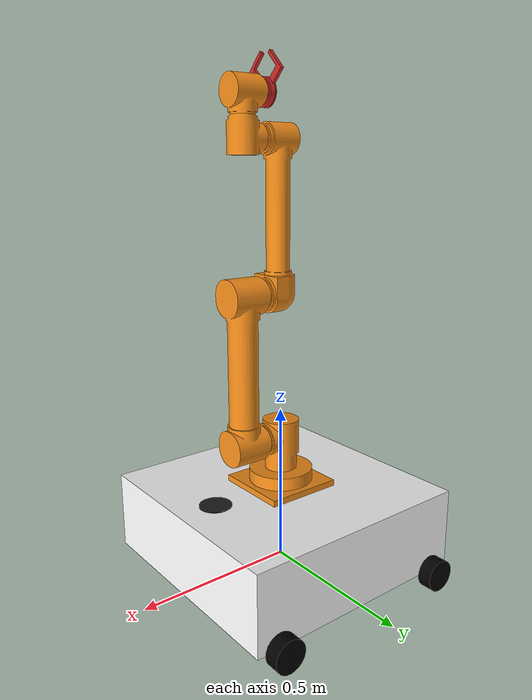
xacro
<?xml version="1.0"?>
<robot xmlns:xacro="http://www.ros.org/wiki/xacro"  name="robot">

    <xacro:include filename="robot_core.xacro" />
    <xacro:include filename="gazebo_control.xacro" />
    <xacro:include filename="inertial_macros.xacro" />
    <xacro:include filename="robot_control.urdf.xacro" />
    <xacro:include filename="arm_1_transmission.xacro" />
    <xacro:include filename="arm_2_transmission.xacro" />
    <xacro:include filename="arm_3_transmission.xacro" />
    <xacro:include filename="arm_4_transmission.xacro" />
    <xacro:include filename="arm_5_transmission.xacro" />
    <xacro:include filename="grip_1_transmission.xacro" />
    <xacro:include filename="grip_2_transmission.xacro" />

    <ros2_control name = "GazeboSimSystem" type= "system">
        <hardware>
            <plugin>gazebo_ros2_control/GazeboSystem</plugin>
        </hardware>
        <xacro:arm_1_transmission/>
        <xacro:arm_2_transmission/>
        <xacro:arm_3_transmission/>
        <xacro:arm_4_transmission/>
        <xacro:arm_5_transmission/>
        <xacro:grip_1_transmission/>
        <xacro:grip_2_transmission/>
    </ros2_control>
    <xacro:robot_controller/>
</robot>

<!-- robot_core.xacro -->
<robot xmlns:xacro="http://www.ros.org/wiki/xacro" >
    <xacro:include filename="inertial_macros.xacro" />
    <material name="white">
        <color rgba="1 1 1 1" />
    </material>

    <material name="orange">
        <color rgba="1 0.3 0.1 1"/>
    </material>

    <material name="blue">
        <color rgba="0.2 0.2 1 1"/>
    </material>

    <material name="black">
        <color rgba="0 0 0 1"/>
    </material>

    <material name="red">
        <color rgba="1 0 0 1"/>
    </material>

    <!-- BASE LINK -->

    <link name="base_link">

    </link>

    <joint name="chassis_joint" type="fixed">
        <parent link="base_link"/>
        <child link="chassis"/>
        <origin xyz="0 0 0"/>
    </joint>

    <link name="chassis">
        <visual>
            <origin xyz="0 0 0" rpy="0 0 0"/>
            <geometry>
                <mesh filename="file:///home/white/final_ws/src/articubot_one/description/body.dae"/>
            </geometry>
            <material name="white"/>
        </visual>
        <collision>
            <origin xyz="0 0 0" rpy="0 0 0"/>
            <geometry>
                <mesh filename="file:///home/white/final_ws/src/articubot_one/description/body.dae"/>
            </geometry>
        </collision>
        <xacro:inertial_box mass="5.0" x="0.75" y="0.75" z="0.25">
            <origin xyz="0 0 0.125" rpy="0 0 0"/>
        </xacro:inertial_box>
    </link>

    <gazebo reference="chassis">
        <material>Gazebo/Blue</material>
        <mu1 value="0.1"/>
        <mu2 value="0.1"/>
    </gazebo>

    <!-- LEFT WHEEL -->
    <!-- Front -->
    <joint name="left_front_wheel_joint" type="continuous">
        <parent link="chassis"/>
        <child link="left_front_wheel"/>
        <origin xyz="0.3 0.3975 0" rpy="-${pi/2} 0 0"/>
        <axis xyz="0 0 1"/>
    </joint>

    <link name="left_front_wheel">
        <visual>
            <geometry>
                <cylinder length="0.045" radius="0.05" />
            </geometry>
            <material name="black"/>
        </visual>
        <collision>
            <geometry>
                <cylinder length="0.045" radius="0.05" />
            </geometry>
        </collision>
        <xacro:inertial_cylinder mass="0.1" length="0.045" radius="0.05">
            <origin xyz="0 0 0" rpy="0 0 0"/>
        </xacro:inertial_cylinder>
    </link>

    <gazebo reference="left_front_wheel">
        <material>Gazebo/Black</material>
        <mu1 value="0.1"/>
        <mu2 value="0.1"/>
    </gazebo>

    <!-- Back -->
    <joint name="left_back_wheel_joint" type="continuous">
        <parent link="chassis"/>
        <child link="left_back_wheel"/>
        <origin xyz="-0.3 0.3975 0" rpy="-${pi/2} 0 0"/>
        <axis xyz="0 0 1"/>
    </joint>

    <link name="left_back_wheel">
        <visual>
            <geometry>
                <cylinder length="0.045" radius="0.05" />
            </geometry>
            <material name="black"/>
        </visual>
        <collision>
            <geometry>
                <cylinder length="0.045" radius="0.05" />
            </geometry>
        </collision>
        <xacro:inertial_cylinder mass="0.1" length="0.045" radius="0.05">
            <origin xyz="0 0 0" rpy="0 0 0"/>
        </xacro:inertial_cylinder>
    </link>

    <gazebo reference="left_back_wheel">
        <material>Gazebo/Black</material>
        <mu1 value="0.1"/>
        <mu2 value="0.1"/>
    </gazebo>

    <!-- RIGHT WHEEl -->
    <!-- Front -->
    <joint name="right_front_wheel_joint" type="continuous">
        <parent link="chassis"/>
        <child link="right_front_wheel"/>
        <origin xyz="0.3 -0.3975 0" rpy="${pi/2} 0 0"/>
        <axis xyz="0 0 -1"/>
    </joint>

    <link name="right_front_wheel">
        <visual>
            <geometry>
                <cylinder length="0.045" radius="0.05" />
            </geometry>
            <material name="black"/>
        </visual>
        <collision>
            <geometry>
                <cylinder length="0.045" radius="0.05" />
            </geometry>
        </collision>
        <xacro:inertial_cylinder mass="0.1" length="0.045" radius="0.05">
            <origin xyz="0 0 0" rpy="0 0 0"/>
        </xacro:inertial_cylinder>
    </link>

    <gazebo reference="right_front_wheel">
        <material>Gazebo/Black</material>
        <mu1 value="0.1"/>
        <mu2 value="0.1"/>
    </gazebo>

    <!-- Back -->
    <joint name="right_back_wheel_joint" type="continuous">
        <parent link="chassis"/>
        <child link="right_back_wheel"/>
        <origin xyz="-0.3 -0.3975 0" rpy="${pi/2} 0 0"/>
        <axis xyz="0 0 -1"/>
    </joint>

    <link name="right_back_wheel">
        <visual>
            <geometry>
                <cylinder length="0.045" radius="0.05" />
            </geometry>
            <material name="black"/>
        </visual>
        <collision>
            <geometry>
                <cylinder length="0.045" radius="0.05" />
            </geometry>
        </collision>
        <xacro:inertial_cylinder mass="0.1" length="0.045" radius="0.05">
            <origin xyz="0 0 0" rpy="0 0 0"/>
        </xacro:inertial_cylinder>
    </link>

    <gazebo reference="right_back_wheel">
        <material>Gazebo/Black</material>
        <mu1 value="0.1"/>
        <mu2 value="0.1"/>
    </gazebo>

    <!-- ROBOT ARM-->
    <!-- Arm Base-->
    <joint name="base_joint" type="fixed">
        <parent link="chassis"/>
        <child link="base"/>
        <origin xyz="0 0 0.25"/>
    </joint>

    <link name="base">
        <visual>
            <geometry>
                <mesh filename="file:///home/white/final_ws/src/articubot_one/description/Arm_base.dae"/>
            </geometry>
        </visual>
        <collision>
            <geometry>
                <mesh filename="file:///home/white/final_ws/src/articubot_one/description/Arm_base.dae"/>
            </geometry>
        </collision>
        <xacro:inertial_cylinder mass="1.0" length="0.06" radius="0.12">
            <origin xyz="0 0 0" rpy="0 0 0"/>
        </xacro:inertial_cylinder>
    </link>

    <gazebo reference="base">
        <material>Gazebo/Orange</material>
        <mu1 value="0.1"/>
        <mu2 value="0.1"/>
    </gazebo>

    <!-- Arm Joint 1 -->
    <joint name="arm_1_joint" type="revolute">
        <parent link="base"/>
        <child link="arm_1"/>
        <origin xyz="0 0 0.06" rpy="0 0 0"/>
        <axis xyz="0 0 1"/>
        <limit lower = "-3.14" upper = "3.14" effort = "1" velocity="1" />
        <dynamics damping="1" friction="1"/>
    </joint>

    <link name="arm_1">
        <visual>
            <geometry>
                <mesh filename="file:///home/white/final_ws/src/articubot_one/description/Arm_joint_1.dae"/>
            </geometry>
        </visual>
        <collision>
            <geometry>
                <mesh filename="file:///home/white/final_ws/src/articubot_one/description/Arm_joint_1.dae"/>
            </geometry>
        </collision>
        <xacro:inertial_cylinder mass="2.0" length="0.16" radius="0.05">
            <origin xyz="0 0 0.075" rpy="0 0 0"/>
        </xacro:inertial_cylinder>
    </link>

    <gazebo reference="arm_1">
        <material>Gazebo/Orange</material>
        <mu1 value="0.1"/>
        <mu2 value="0.1"/>
    </gazebo>

    <!-- Arm Joint 2 -->

    <joint name="arm_2_joint" type="revolute">
        <parent link="arm_1"/>
        <child link="arm_2"/>
        <origin xyz="0.071 0 0.105" rpy="0 0 -${pi/2}"/>
        <axis xyz="0 1 0"/>
        <limit lower = "-1.74" upper = "1.74" effort = "1000000000000" velocity="5" />\
        <dynamics damping="1" friction="1"/>
    </joint>

    <link name="arm_2">
        <visual>
            <geometry>
                <mesh filename="file:///home/white/final_ws/src/articubot_one/description/Arm_joint_2.dae"/>
            </geometry>
        </visual>
        <collision>
            <geometry>
                <mesh filename="file:///home/white/final_ws/src/articubot_one/description/Arm_joint_2.dae"/>
            </geometry>
        </collision>
        <xacro:inertial_cylinder mass="0.1" length="0.565" radius="0.05">
            <origin xyz="0 0.065 0.2325" rpy="0 0 0"/>
        </xacro:inertial_cylinder>
    </link>

    <gazebo reference="arm_2">
        <material>Gazebo/Orange</material>
        <mu1 value="0.1"/>
        <mu2 value="0.1"/>
    </gazebo>

    <!-- Arm Joint 3 -->

    <joint name="arm_3_joint" type="revolute">
        <parent link="arm_2"/>
        <child link="arm_3"/>
        <origin xyz="0 0 0.455" rpy="0 0 -${pi/2}"/>
        <axis xyz="1 0 0"/>
        <limit lower = "-2.88" upper = "2.88" effort = "10" velocity="1" />
        <dynamics damping="1" friction="1"/>
    </joint>

    <link name="arm_3">
        <visual>
            <geometry>
                <mesh filename="file:///home/white/final_ws/src/articubot_one/description/Arm_joint_3.dae"/>
            </geometry>
        </visual>
        <collision>
            <geometry>
                <mesh filename="file:///home/white/final_ws/src/articubot_one/description/Arm_joint_3.dae"/>
            </geometry>
        </collision>
        <xacro:inertial_cylinder mass="0.1" length="0.537" radius="0.04">
            <origin xyz="0.06 0 0.2125" rpy="0 0 0"/>
        </xacro:inertial_cylinder>
    </link>

    <gazebo reference="arm_3">
        <material>Gazebo/Orange</material>
        <mu1 value="0.1"/>
        <mu2 value="0.1"/>
    </gazebo>

    <!-- Arm Joint 4 -->

    <joint name="arm_4_joint" type="revolute">
        <parent link="arm_3"/>
        <child link="arm_4"/>
        <origin xyz="0 0 0.437" rpy="-${pi} 0 -${pi}"/>
        <axis xyz="1 0 0"/>
        <limit lower = "-3.14" upper = "3.14" effort = "1" velocity="1" />
        <dynamics damping="1" friction="1"/>
    </joint>

    <link name="arm_4">
        <visual>
            <geometry>
                <mesh filename="file:///home/white/final_ws/src/articubot_one/description/Arm_joint_4.dae"/>
            </geometry>
        </visual>
        <collision>
            <geometry>
                <mesh filename="file:///home/white/final_ws/src/articubot_one/description/Arm_joint_4.dae"/>
            </geometry>
        </collision>
        <xacro:inertial_cylinder mass="0.1" length="0.115" radius="0.045">
            <origin xyz="0.06 0 0" rpy="0 0 0"/>
        </xacro:inertial_cylinder>
    </link>

    <gazebo reference="arm_4">
        <material>Gazebo/Orange</material>
        <mu1 value="0.1"/>
        <mu2 value="0.1"/>
    </gazebo>

    <!-- Arm Joint 5 -->

    <joint name="arm_5_joint" type="revolute">
        <parent link="arm_4"/>
        <child link="arm_5"/>
        <origin xyz="0.06 0 -0.06" rpy="-${pi/2} 0 0"/>
        <axis xyz="0 1 0"/>
        <limit lower = "-3.14" upper = "3.14" effort = "1" velocity="1" />
        <dynamics damping="1" friction="1"/>
    </joint>

    <link name="arm_5">
        <visual>
            <geometry>
                <mesh filename="file:///home/white/final_ws/src/articubot_one/description/Arm_joint_5.dae"/>
            </geometry>
        </visual>
        <collision>
            <geometry>
                <mesh filename="file:///home/white/final_ws/src/articubot_one/description/Arm_joint_5.dae"/>
            </geometry>
        </collision>
        <xacro:inertial_cylinder mass="0.1" length="0.105" radius="0.045">
            <origin xyz="0 0.06 0" rpy="0 0 0"/>
        </xacro:inertial_cylinder>
    </link>

    <gazebo reference="arm_5">
        <material>Gazebo/Orange</material>
        <mu1 value="0.1"/>
        <mu2 value="0.1"/>
    </gazebo>

    <!-- GRIP -->
    <!-- Grip 1 -->

    <joint name="grip_1_joint" type="revolute">
        <parent link="arm_5"/>
        <child link="grip_1"/>
        <origin xyz="-0.06 0.06 0" rpy="0 0 0"/>
        <axis xyz="1 0 0"/>
        <limit lower = "-1.74" upper = "1.74" effort = "1" velocity="0.01" />
        <dynamics damping="1" friction="1"/>
    </joint>

    <link name="grip_1">
        <visual>
            <geometry>
                <mesh filename="file:///home/white/final_ws/src/articubot_one/description/Grip_1.dae"/>
            </geometry>
        </visual>
        <collision>
            <geometry>
                <mesh filename="file:///home/white/final_ws/src/articubot_one/description/Grip_1.dae"/>
            </geometry>
        </collision>
        <xacro:inertial_cylinder mass="0.1" length="0.025" radius="0.035">
            <origin xyz="0 0 0" rpy="0 0 0"/>
        </xacro:inertial_cylinder>
    </link>

    <gazebo reference="grip_1">
        <material>Gazebo/Red</material>
        <mu1 value="0.1"/>
        <mu2 value="0.1"/>
    </gazebo>

    <!-- Grip 2 -->

    <joint name="grip_2_joint" type="revolute">
        <parent link="arm_5"/>
        <child link="grip_2"/>
        <origin xyz="-0.075 0.06 0" rpy="${pi} 0 -${pi}"/>
        <axis xyz="-1 0 0"/>
        <limit lower = "-1.74" upper = "1.74" effort = "1" velocity="0.01" />
        <dynamics damping="1" friction="1"/>
    </joint>

    <link name="grip_2">
        <visual>
            <geometry>
                <mesh filename="file:///home/white/final_ws/src/articubot_one/description/Grip_2.dae"/>
            </geometry>
        </visual>
        <collision>
            <geometry>
                <mesh filename="file:///home/white/final_ws/src/articubot_one/description/Grip_2.dae"/>
            </geometry>
        </collision>
        <xacro:inertial_cylinder mass="0.1" length="0.025" radius="0.035">
            <origin xyz="0 0 0" rpy="0 0 0"/>
        </xacro:inertial_cylinder>
    </link>

    <gazebo reference="grip_2">
        <material>Gazebo/Red</material>
        <mu1 value="0.1"/>
        <mu2 value="0.1"/>
    </gazebo>

    <!-- LIDAR -->

    <joint name="laser_joint" type="fixed">
        <parent link="chassis"/>
        <child link="laser_frame"/>
        <origin xyz="0.25 0 0.25" rpy="0 0 0"/>
    </joint>

    <link name="laser_frame">
        <visual>
            <geometry>
                <cylinder radius="0.05" length="0.005"/>
            </geometry>
            <material name="Black"/>
        </visual>
        <collision>
            <geometry>
                <cylinder radius="0.05" length="0.005"/>
            </geometry>
        </collision>
        <xacro:inertial_cylinder mass="0.1" length="0.005" radius="0.05">
            <origin xyz="0 0 0" rpy="0 0 0"/>
        </xacro:inertial_cylinder>
    </link>

    <gazebo reference="laser_frame">
        <material>Gazebo/Black</material>

        <sensor name="laser" type="ray">
            <pose> 0 0 0 0 0 0 </pose>
            <visualize>true</visualize>
            <update_rate>10</update_rate>
            <ray>
                <scan>
                    <horizontal>
                        <samples>360</samples>
                        <min_angle>-3.14</min_angle>
                        <max_angle>3.14</max_angle>
                    </horizontal>
                </scan>
                <range>
                    <min>0.5</min>
                    <max>12</max>
                </range>
            </ray>

            <plugin name="laser_controller" filename="libgazebo_ros_ray_sensor.so">
                <ros>
                    <argument>~/out:=scan</argument>
                </ros>
                <output_type>sensor_msgs/LaserScan</output_type>
                <frame_name>laser_frame</frame_name>
            </plugin>
        </sensor>
    </gazebo>

</robot>
